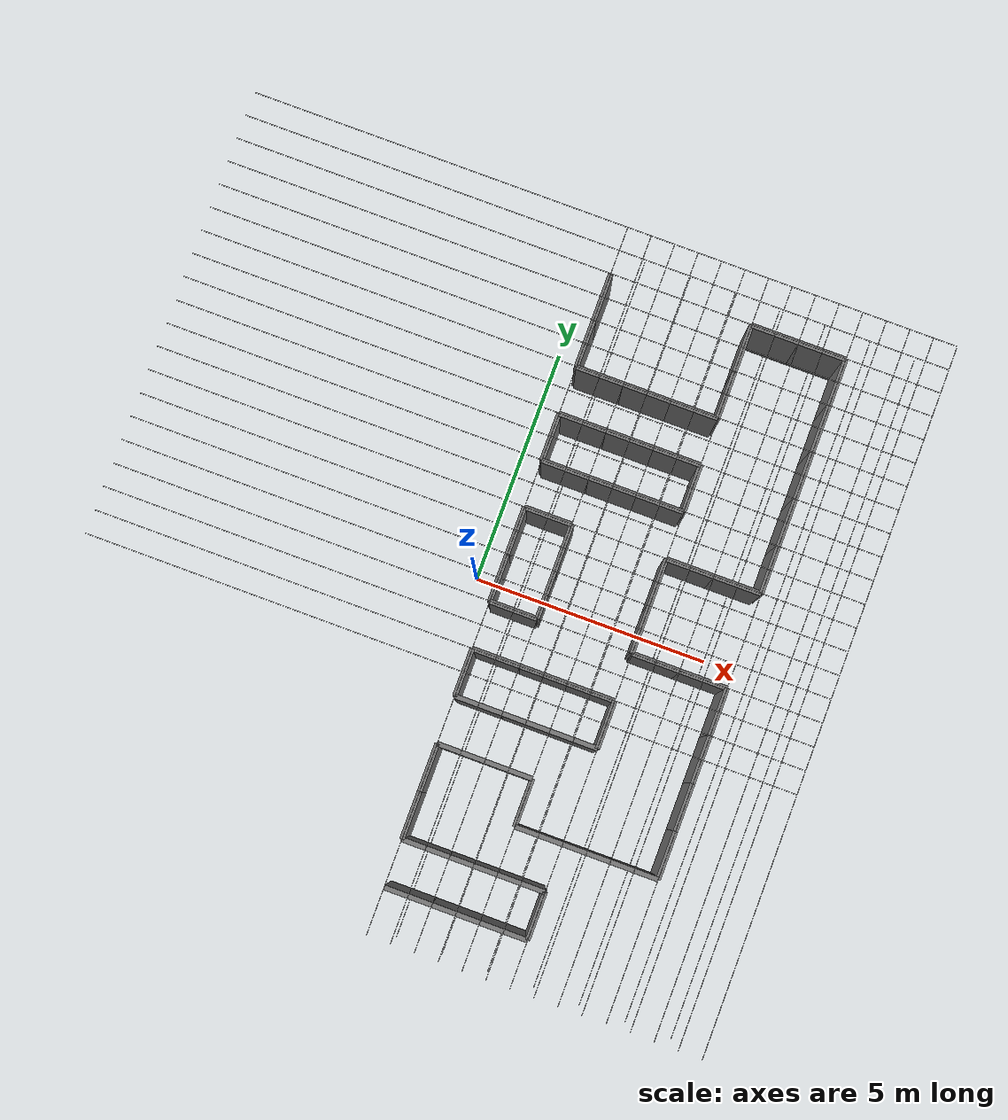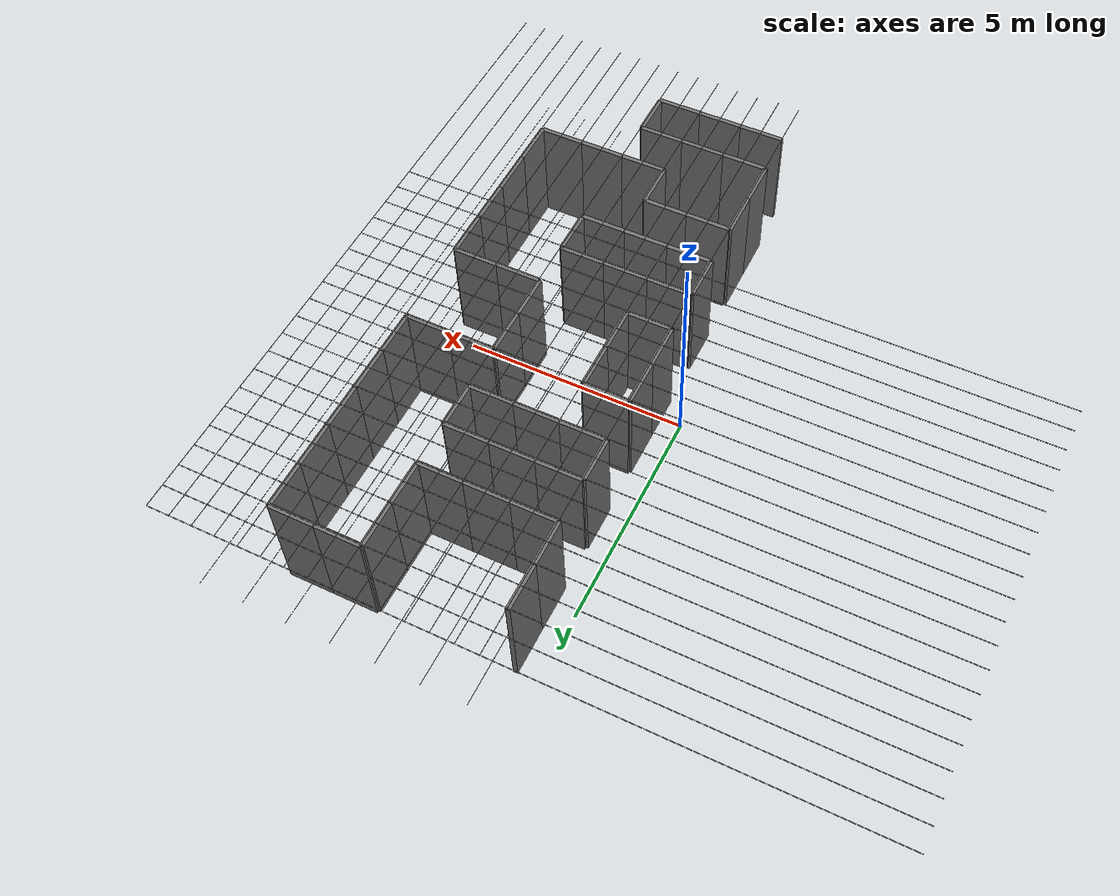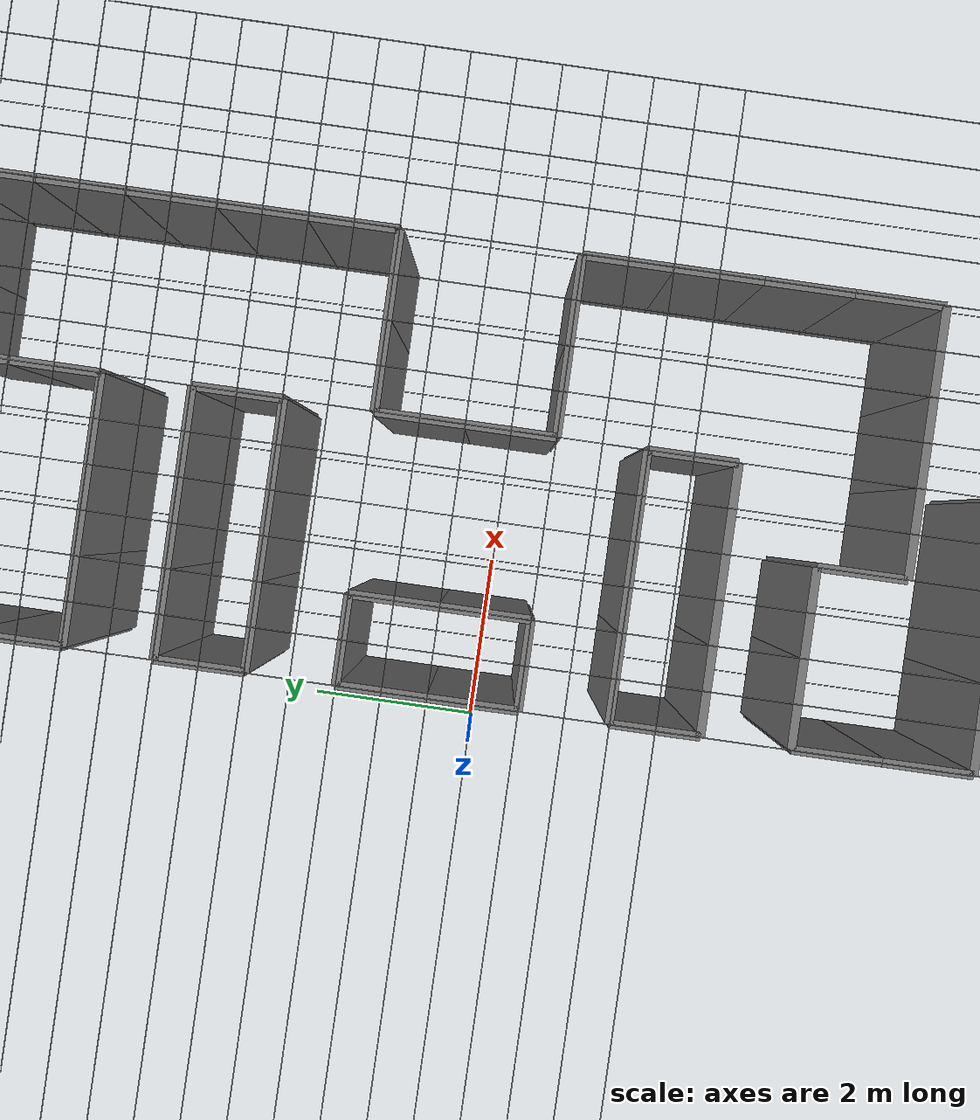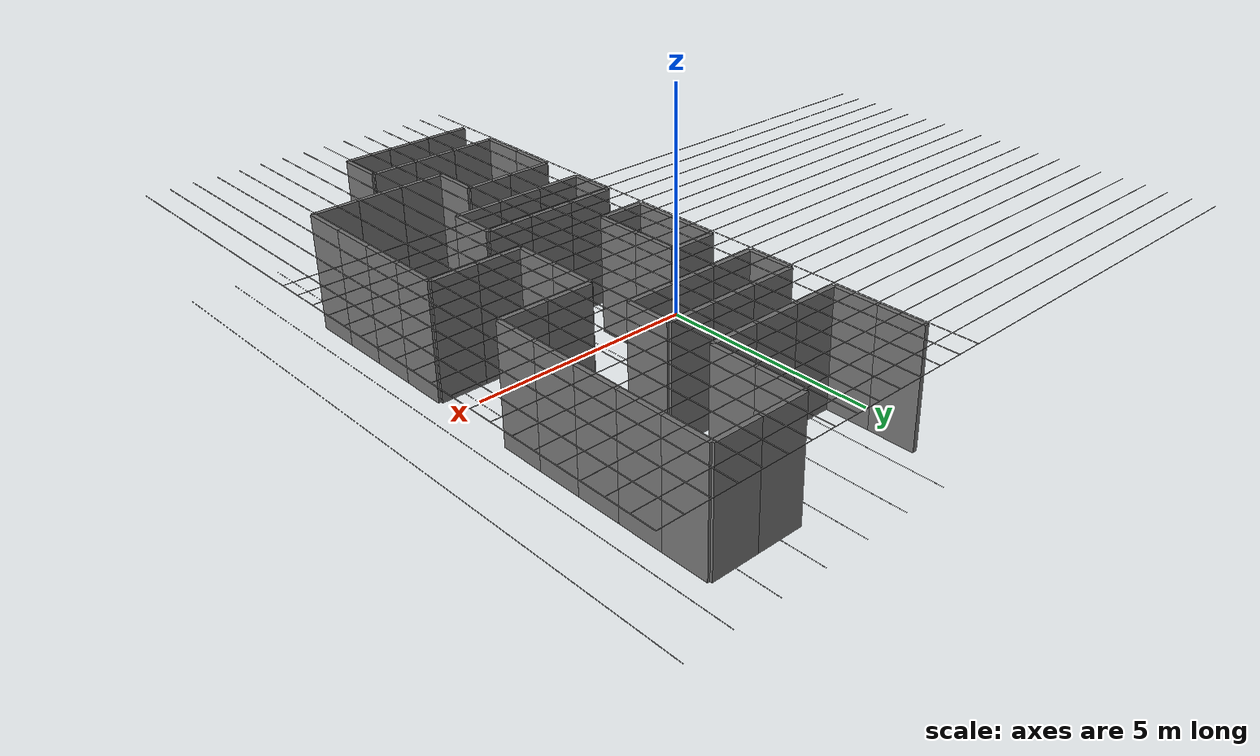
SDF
<sdf version="1.9">
 <world name="nidar_airmouse_building">
  <model name="grid_x_8">
   <static>true</static>
   <pose>1 0 0.006 0 0 0</pose>
   <link name="link">
    <visual name="visual">
     <geometry><box><size>0.008 15 0.002</size></box></geometry>
     <material><ambient>0.25 0.25 0.25 0.35</ambient></material>
    </visual>
   </link>
  </model>
  <model name="grid_x_9">
   <static>true</static>
   <pose>2 0 0.006 0 0 0</pose>
   <link name="link">
    <visual name="visual">
     <geometry><box><size>0.008 15 0.002</size></box></geometry>
     <material><ambient>0.25 0.25 0.25 0.35</ambient></material>
    </visual>
   </link>
  </model>
  <model name="grid_x_10">
   <static>true</static>
   <pose>3 0 0.006 0 0 0</pose>
   <link name="link">
    <visual name="visual">
     <geometry><box><size>0.008 15 0.002</size></box></geometry>
     <material><ambient>0.25 0.25 0.25 0.35</ambient></material>
    </visual>
   </link>
  </model>
  <model name="grid_x_11">
   <static>true</static>
   <pose>4 0 0.006 0 0 0</pose>
   <link name="link">
    <visual name="visual">
     <geometry><box><size>0.008 15 0.002</size></box></geometry>
     <material><ambient>0.25 0.25 0.25 0.35</ambient></material>
    </visual>
   </link>
  </model>
  <model name="grid_x_12">
   <static>true</static>
   <pose>5 0 0.006 0 0 0</pose>
   <link name="link">
    <visual name="visual">
     <geometry><box><size>0.008 15 0.002</size></box></geometry>
     <material><ambient>0.25 0.25 0.25 0.35</ambient></material>
    </visual>
   </link>
  </model>
  <model name="grid_x_13">
   <static>true</static>
   <pose>6 0 0.006 0 0 0</pose>
   <link name="link">
    <visual name="visual">
     <geometry><box><size>0.008 15 0.002</size></box></geometry>
     <material><ambient>0.25 0.25 0.25 0.35</ambient></material>
    </visual>
   </link>
  </model>
  <model name="grid_x_14">
   <static>true</static>
   <pose>7 0 0.006 0 0 0</pose>
   <link name="link">
    <visual name="visual">
     <geometry><box><size>0.008 15 0.002</size></box></geometry>
     <material><ambient>0.25 0.25 0.25 0.35</ambient></material>
    </visual>
   </link>
  </model>
  <model name="wall_7">
   <static>true</static>
   <pose>0.5 6.0 1.25
            0 0 0</pose>
   <link name="link">
    <collision name="collision"><geometry><box><size>0.1 1.0 2.5</size></box></geometry></collision>
    <visual name="visual">
     <geometry><box><size>0.1 1.0 2.5</size></box></geometry>
     <material><ambient>0.35 0.35 0.35 1</ambient><diffuse>0.45 0.45 0.45 1</diffuse></material>
    </visual>
   </link>
  </model>
  <model name="wall_8">
   <static>true</static>
   <pose>4.0 6.5 1.25
            0 0 0</pose>
   <link name="link">
    <collision name="collision"><geometry><box><size>1.0 0.1 2.5</size></box></geometry></collision>
    <visual name="visual">
     <geometry><box><size>1.0 0.1 2.5</size></box></geometry>
     <material><ambient>0.35 0.35 0.35 1</ambient><diffuse>0.45 0.45 0.45 1</diffuse></material>
    </visual>
   </link>
  </model>
  <model name="wall_9">
   <static>true</static>
   <pose>3.5 6.0 1.25
            0 0 0</pose>
   <link name="link">
    <collision name="collision"><geometry><box><size>0.1 1.0 2.5</size></box></geometry></collision>
    <visual name="visual">
     <geometry><box><size>0.1 1.0 2.5</size></box></geometry>
     <material><ambient>0.35 0.35 0.35 1</ambient><diffuse>0.45 0.45 0.45 1</diffuse></material>
    </visual>
   </link>
  </model>
  <model name="wall_10">
   <static>true</static>
   <pose>5.0 6.5 1.25
            0 0 0</pose>
   <link name="link">
    <collision name="collision"><geometry><box><size>1.0 0.1 2.5</size></box></geometry></collision>
    <visual name="visual">
     <geometry><box><size>1.0 0.1 2.5</size></box></geometry>
     <material><ambient>0.35 0.35 0.35 1</ambient><diffuse>0.45 0.45 0.45 1</diffuse></material>
    </visual>
   </link>
  </model>
  <model name="wall_11">
   <static>true</static>
   <pose>5.5 6.0 1.25
            0 0 0</pose>
   <link name="link">
    <collision name="collision"><geometry><box><size>0.1 1.0 2.5</size></box></geometry></collision>
    <visual name="visual">
     <geometry><box><size>0.1 1.0 2.5</size></box></geometry>
     <material><ambient>0.35 0.35 0.35 1</ambient><diffuse>0.45 0.45 0.45 1</diffuse></material>
    </visual>
   </link>
  </model>
  <model name="wall_16">
   <static>true</static>
   <pose>0.5 5.0 1.25
            0 0 0</pose>
   <link name="link">
    <collision name="collision"><geometry><box><size>0.1 1.0 2.5</size></box></geometry></collision>
    <visual name="visual">
     <geometry><box><size>0.1 1.0 2.5</size></box></geometry>
     <material><ambient>0.35 0.35 0.35 1</ambient><diffuse>0.45 0.45 0.45 1</diffuse></material>
    </visual>
   </link>
  </model>
  <model name="wall_17">
   <static>true</static>
   <pose>3.5 5.0 1.25
            0 0 0</pose>
   <link name="link">
    <collision name="collision"><geometry><box><size>0.1 1.0 2.5</size></box></geometry></collision>
    <visual name="visual">
     <geometry><box><size>0.1 1.0 2.5</size></box></geometry>
     <material><ambient>0.35 0.35 0.35 1</ambient><diffuse>0.45 0.45 0.45 1</diffuse></material>
    </visual>
   </link>
  </model>
  <model name="wall_18">
   <static>true</static>
   <pose>5.5 5.0 1.25
            0 0 0</pose>
   <link name="link">
    <collision name="collision"><geometry><box><size>0.1 1.0 2.5</size></box></geometry></collision>
    <visual name="visual">
     <geometry><box><size>0.1 1.0 2.5</size></box></geometry>
     <material><ambient>0.35 0.35 0.35 1</ambient><diffuse>0.45 0.45 0.45 1</diffuse></material>
    </visual>
   </link>
  </model>
  <model name="wall_26">
   <static>true</static>
   <pose>1.0 4.5 1.25
            0 0 0</pose>
   <link name="link">
    <collision name="collision"><geometry><box><size>1.0 0.1 2.5</size></box></geometry></collision>
    <visual name="visual">
     <geometry><box><size>1.0 0.1 2.5</size></box></geometry>
     <material><ambient>0.35 0.35 0.35 1</ambient><diffuse>0.45 0.45 0.45 1</diffuse></material>
    </visual>
   </link>
  </model>
  <model name="wall_27">
   <static>true</static>
   <pose>1.0 3.5 1.25
            0 0 0</pose>
   <link name="link">
    <collision name="collision"><geometry><box><size>1.0 0.1 2.5</size></box></geometry></collision>
    <visual name="visual">
     <geometry><box><size>1.0 0.1 2.5</size></box></geometry>
     <material><ambient>0.35 0.35 0.35 1</ambient><diffuse>0.45 0.45 0.45 1</diffuse></material>
    </visual>
   </link>
  </model>
  <model name="wall_28">
   <static>true</static>
   <pose>2.0 4.5 1.25
            0 0 0</pose>
   <link name="link">
    <collision name="collision"><geometry><box><size>1.0 0.1 2.5</size></box></geometry></collision>
    <visual name="visual">
     <geometry><box><size>1.0 0.1 2.5</size></box></geometry>
     <material><ambient>0.35 0.35 0.35 1</ambient><diffuse>0.45 0.45 0.45 1</diffuse></material>
    </visual>
   </link>
  </model>
  <model name="wall_29">
   <static>true</static>
   <pose>2.0 3.5 1.25
            0 0 0</pose>
   <link name="link">
    <collision name="collision"><geometry><box><size>1.0 0.1 2.5</size></box></geometry></collision>
    <visual name="visual">
     <geometry><box><size>1.0 0.1 2.5</size></box></geometry>
     <material><ambient>0.35 0.35 0.35 1</ambient><diffuse>0.45 0.45 0.45 1</diffuse></material>
    </visual>
   </link>
  </model>
  <model name="wall_30">
   <static>true</static>
   <pose>3.0 4.5 1.25
            0 0 0</pose>
   <link name="link">
    <collision name="collision"><geometry><box><size>1.0 0.1 2.5</size></box></geometry></collision>
    <visual name="visual">
     <geometry><box><size>1.0 0.1 2.5</size></box></geometry>
     <material><ambient>0.35 0.35 0.35 1</ambient><diffuse>0.45 0.45 0.45 1</diffuse></material>
    </visual>
   </link>
  </model>
  <model name="wall_31">
   <static>true</static>
   <pose>3.0 3.5 1.25
            0 0 0</pose>
   <link name="link">
    <collision name="collision"><geometry><box><size>1.0 0.1 2.5</size></box></geometry></collision>
    <visual name="visual">
     <geometry><box><size>1.0 0.1 2.5</size></box></geometry>
     <material><ambient>0.35 0.35 0.35 1</ambient><diffuse>0.45 0.45 0.45 1</diffuse></material>
    </visual>
   </link>
  </model>
  <model name="wall_32">
   <static>true</static>
   <pose>5.5 4.0 1.25
            0 0 0</pose>
   <link name="link">
    <collision name="collision"><geometry><box><size>0.1 1.0 2.5</size></box></geometry></collision>
    <visual name="visual">
     <geometry><box><size>0.1 1.0 2.5</size></box></geometry>
     <material><ambient>0.35 0.35 0.35 1</ambient><diffuse>0.45 0.45 0.45 1</diffuse></material>
    </visual>
   </link>
  </model>
  <model name="wall_36">
   <static>true</static>
   <pose>0.5 3.0 1.25
            0 0 0</pose>
   <link name="link">
    <collision name="collision"><geometry><box><size>0.1 1.0 2.5</size></box></geometry></collision>
    <visual name="visual">
     <geometry><box><size>0.1 1.0 2.5</size></box></geometry>
     <material><ambient>0.35 0.35 0.35 1</ambient><diffuse>0.45 0.45 0.45 1</diffuse></material>
    </visual>
   </link>
  </model>
  <model name="wall_37">
   <static>true</static>
   <pose>3.5 3.0 1.25
            0 0 0</pose>
   <link name="link">
    <collision name="collision"><geometry><box><size>0.1 1.0 2.5</size></box></geometry></collision>
    <visual name="visual">
     <geometry><box><size>0.1 1.0 2.5</size></box></geometry>
     <material><ambient>0.35 0.35 0.35 1</ambient><diffuse>0.45 0.45 0.45 1</diffuse></material>
    </visual>
   </link>
  </model>
  <model name="wall_38">
   <static>true</static>
   <pose>5.5 3.0 1.25
            0 0 0</pose>
   <link name="link">
    <collision name="collision"><geometry><box><size>0.1 1.0 2.5</size></box></geometry></collision>
    <visual name="visual">
     <geometry><box><size>0.1 1.0 2.5</size></box></geometry>
     <material><ambient>0.35 0.35 0.35 1</ambient><diffuse>0.45 0.45 0.45 1</diffuse></material>
    </visual>
   </link>
  </model>
  <model name="wall_48">
   <static>true</static>
   <pose>1.0 2.5 1.25
            0 0 0</pose>
   <link name="link">
    <collision name="collision"><geometry><box><size>1.0 0.1 2.5</size></box></geometry></collision>
    <visual name="visual">
     <geometry><box><size>1.0 0.1 2.5</size></box></geometry>
     <material><ambient>0.35 0.35 0.35 1</ambient><diffuse>0.45 0.45 0.45 1</diffuse></material>
    </visual>
   </link>
  </model>
  <model name="wall_49">
   <static>true</static>
   <pose>1.0 1.5 1.25
            0 0 0</pose>
   <link name="link">
    <collision name="collision"><geometry><box><size>1.0 0.1 2.5</size></box></geometry></collision>
    <visual name="visual">
     <geometry><box><size>1.0 0.1 2.5</size></box></geometry>
     <material><ambient>0.35 0.35 0.35 1</ambient><diffuse>0.45 0.45 0.45 1</diffuse></material>
    </visual>
   </link>
  </model>
  <model name="wall_50">
   <static>true</static>
   <pose>2.0 2.5 1.25
            0 0 0</pose>
   <link name="link">
    <collision name="collision"><geometry><box><size>1.0 0.1 2.5</size></box></geometry></collision>
    <visual name="visual">
     <geometry><box><size>1.0 0.1 2.5</size></box></geometry>
     <material><ambient>0.35 0.35 0.35 1</ambient><diffuse>0.45 0.45 0.45 1</diffuse></material>
    </visual>
   </link>
  </model>
  <model name="wall_51">
   <static>true</static>
   <pose>3.0 2.5 1.25
            0 0 0</pose>
   <link name="link">
    <collision name="collision"><geometry><box><size>1.0 0.1 2.5</size></box></geometry></collision>
    <visual name="visual">
     <geometry><box><size>1.0 0.1 2.5</size></box></geometry>
     <material><ambient>0.35 0.35 0.35 1</ambient><diffuse>0.45 0.45 0.45 1</diffuse></material>
    </visual>
   </link>
  </model>
  <model name="wall_52">
   <static>true</static>
   <pose>4.0 1.5 1.25
            0 0 0</pose>
   <link name="link">
    <collision name="collision"><geometry><box><size>1.0 0.1 2.5</size></box></geometry></collision>
    <visual name="visual">
     <geometry><box><size>1.0 0.1 2.5</size></box></geometry>
     <material><ambient>0.35 0.35 0.35 1</ambient><diffuse>0.45 0.45 0.45 1</diffuse></material>
    </visual>
   </link>
  </model>
  <model name="wall_53">
   <static>true</static>
   <pose>5.0 1.5 1.25
            0 0 0</pose>
   <link name="link">
    <collision name="collision"><geometry><box><size>1.0 0.1 2.5</size></box></geometry></collision>
    <visual name="visual">
     <geometry><box><size>1.0 0.1 2.5</size></box></geometry>
     <material><ambient>0.35 0.35 0.35 1</ambient><diffuse>0.45 0.45 0.45 1</diffuse></material>
    </visual>
   </link>
  </model>
  <model name="wall_54">
   <static>true</static>
   <pose>5.5 2.0 1.25
            0 0 0</pose>
   <link name="link">
    <collision name="collision"><geometry><box><size>0.1 1.0 2.5</size></box></geometry></collision>
    <visual name="visual">
     <geometry><box><size>0.1 1.0 2.5</size></box></geometry>
     <material><ambient>0.35 0.35 0.35 1</ambient><diffuse>0.45 0.45 0.45 1</diffuse></material>
    </visual>
   </link>
  </model>
  <model name="wall_56">
   <static>true</static>
   <pose>0.5 1.0 1.25
            0 0 0</pose>
   <link name="link">
    <collision name="collision"><geometry><box><size>0.1 1.0 2.5</size></box></geometry></collision>
    <visual name="visual">
     <geometry><box><size>0.1 1.0 2.5</size></box></geometry>
     <material><ambient>0.35 0.35 0.35 1</ambient><diffuse>0.45 0.45 0.45 1</diffuse></material>
    </visual>
   </link>
  </model>
  <model name="wall_57">
   <static>true</static>
   <pose>1.5 1.0 1.25
            0 0 0</pose>
   <link name="link">
    <collision name="collision"><geometry><box><size>0.1 1.0 2.5</size></box></geometry></collision>
    <visual name="visual">
     <geometry><box><size>0.1 1.0 2.5</size></box></geometry>
     <material><ambient>0.35 0.35 0.35 1</ambient><diffuse>0.45 0.45 0.45 1</diffuse></material>
    </visual>
   </link>
  </model>
  <model name="wall_58">
   <static>true</static>
   <pose>3.5 1.0 1.25
            0 0 0</pose>
   <link name="link">
    <collision name="collision"><geometry><box><size>0.1 1.0 2.5</size></box></geometry></collision>
    <visual name="visual">
     <geometry><box><size>0.1 1.0 2.5</size></box></geometry>
     <material><ambient>0.35 0.35 0.35 1</ambient><diffuse>0.45 0.45 0.45 1</diffuse></material>
    </visual>
   </link>
  </model>
  <model name="wall_60">
   <static>true</static>
   <pose>0.5 0.0 1.25
            0 0 0</pose>
   <link name="link">
    <collision name="collision"><geometry><box><size>0.1 1.0 2.5</size></box></geometry></collision>
    <visual name="visual">
     <geometry><box><size>0.1 1.0 2.5</size></box></geometry>
     <material><ambient>0.35 0.35 0.35 1</ambient><diffuse>0.45 0.45 0.45 1</diffuse></material>
    </visual>
   </link>
  </model>
  <model name="wall_61">
   <static>true</static>
   <pose>1.5 0.0 1.25
            0 0 0</pose>
   <link name="link">
    <collision name="collision"><geometry><box><size>0.1 1.0 2.5</size></box></geometry></collision>
    <visual name="visual">
     <geometry><box><size>0.1 1.0 2.5</size></box></geometry>
     <material><ambient>0.35 0.35 0.35 1</ambient><diffuse>0.45 0.45 0.45 1</diffuse></material>
    </visual>
   </link>
  </model>
  <model name="wall_62">
   <static>true</static>
   <pose>3.5 0.0 1.25
            0 0 0</pose>
   <link name="link">
    <collision name="collision"><geometry><box><size>0.1 1.0 2.5</size></box></geometry></collision>
    <visual name="visual">
     <geometry><box><size>0.1 1.0 2.5</size></box></geometry>
     <material><ambient>0.35 0.35 0.35 1</ambient><diffuse>0.45 0.45 0.45 1</diffuse></material>
    </visual>
   </link>
  </model>
  <model name="wall_64">
   <static>true</static>
   <pose>1.0 -0.5 1.25
            0 0 0</pose>
   <link name="link">
    <collision name="collision"><geometry><box><size>1.0 0.1 2.5</size></box></geometry></collision>
    <visual name="visual">
     <geometry><box><size>1.0 0.1 2.5</size></box></geometry>
     <material><ambient>0.35 0.35 0.35 1</ambient><diffuse>0.45 0.45 0.45 1</diffuse></material>
    </visual>
   </link>
  </model>
  <model name="wall_65">
   <static>true</static>
   <pose>1.0 -1.5 1.25
            0 0 0</pose>
   <link name="link">
    <collision name="collision"><geometry><box><size>1.0 0.1 2.5</size></box></geometry></collision>
    <visual name="visual">
     <geometry><box><size>1.0 0.1 2.5</size></box></geometry>
     <material><ambient>0.35 0.35 0.35 1</ambient><diffuse>0.45 0.45 0.45 1</diffuse></material>
    </visual>
   </link>
  </model>
  <model name="wall_66">
   <static>true</static>
   <pose>2.0 -1.5 1.25
            0 0 0</pose>
   <link name="link">
    <collision name="collision"><geometry><box><size>1.0 0.1 2.5</size></box></geometry></collision>
    <visual name="visual">
     <geometry><box><size>1.0 0.1 2.5</size></box></geometry>
     <material><ambient>0.35 0.35 0.35 1</ambient><diffuse>0.45 0.45 0.45 1</diffuse></material>
    </visual>
   </link>
  </model>
  <model name="wall_67">
   <static>true</static>
   <pose>3.0 -1.5 1.25
            0 0 0</pose>
   <link name="link">
    <collision name="collision"><geometry><box><size>1.0 0.1 2.5</size></box></geometry></collision>
    <visual name="visual">
     <geometry><box><size>1.0 0.1 2.5</size></box></geometry>
     <material><ambient>0.35 0.35 0.35 1</ambient><diffuse>0.45 0.45 0.45 1</diffuse></material>
    </visual>
   </link>
  </model>
  <model name="wall_68">
   <static>true</static>
   <pose>4.0 -0.5 1.25
            0 0 0</pose>
   <link name="link">
    <collision name="collision"><geometry><box><size>1.0 0.1 2.5</size></box></geometry></collision>
    <visual name="visual">
     <geometry><box><size>1.0 0.1 2.5</size></box></geometry>
     <material><ambient>0.35 0.35 0.35 1</ambient><diffuse>0.45 0.45 0.45 1</diffuse></material>
    </visual>
   </link>
  </model>
  <model name="wall_69">
   <static>true</static>
   <pose>5.0 -0.5 1.25
            0 0 0</pose>
   <link name="link">
    <collision name="collision"><geometry><box><size>1.0 0.1 2.5</size></box></geometry></collision>
    <visual name="visual">
     <geometry><box><size>1.0 0.1 2.5</size></box></geometry>
     <material><ambient>0.35 0.35 0.35 1</ambient><diffuse>0.45 0.45 0.45 1</diffuse></material>
    </visual>
   </link>
  </model>
  <model name="wall_70">
   <static>true</static>
   <pose>5.5 -1.0 1.25
            0 0 0</pose>
   <link name="link">
    <collision name="collision"><geometry><box><size>0.1 1.0 2.5</size></box></geometry></collision>
    <visual name="visual">
     <geometry><box><size>0.1 1.0 2.5</size></box></geometry>
     <material><ambient>0.35 0.35 0.35 1</ambient><diffuse>0.45 0.45 0.45 1</diffuse></material>
    </visual>
   </link>
  </model>
  <model name="wall_77">
   <static>true</static>
   <pose>0.5 -2.0 1.25
            0 0 0</pose>
   <link name="link">
    <collision name="collision"><geometry><box><size>0.1 1.0 2.5</size></box></geometry></collision>
    <visual name="visual">
     <geometry><box><size>0.1 1.0 2.5</size></box></geometry>
     <material><ambient>0.35 0.35 0.35 1</ambient><diffuse>0.45 0.45 0.45 1</diffuse></material>
    </visual>
   </link>
  </model>
  <model name="wall_78">
   <static>true</static>
   <pose>3.5 -2.0 1.25
            0 0 0</pose>
   <link name="link">
    <collision name="collision"><geometry><box><size>0.1 1.0 2.5</size></box></geometry></collision>
    <visual name="visual">
     <geometry><box><size>0.1 1.0 2.5</size></box></geometry>
     <material><ambient>0.35 0.35 0.35 1</ambient><diffuse>0.45 0.45 0.45 1</diffuse></material>
    </visual>
   </link>
  </model>
  <model name="wall_79">
   <static>true</static>
   <pose>5.5 -2.0 1.25
            0 0 0</pose>
   <link name="link">
    <collision name="collision"><geometry><box><size>0.1 1.0 2.5</size></box></geometry></collision>
    <visual name="visual">
     <geometry><box><size>0.1 1.0 2.5</size></box></geometry>
     <material><ambient>0.35 0.35 0.35 1</ambient><diffuse>0.45 0.45 0.45 1</diffuse></material>
    </visual>
   </link>
  </model>
  <model name="wall_86">
   <static>true</static>
   <pose>1.0 -2.5 1.25
            0 0 0</pose>
   <link name="link">
    <collision name="collision"><geometry><box><size>1.0 0.1 2.5</size></box></geometry></collision>
    <visual name="visual">
     <geometry><box><size>1.0 0.1 2.5</size></box></geometry>
     <material><ambient>0.35 0.35 0.35 1</ambient><diffuse>0.45 0.45 0.45 1</diffuse></material>
    </visual>
   </link>
  </model>
  <model name="wall_87">
   <static>true</static>
   <pose>1.0 -3.5 1.25
            0 0 0</pose>
   <link name="link">
    <collision name="collision"><geometry><box><size>1.0 0.1 2.5</size></box></geometry></collision>
    <visual name="visual">
     <geometry><box><size>1.0 0.1 2.5</size></box></geometry>
     <material><ambient>0.35 0.35 0.35 1</ambient><diffuse>0.45 0.45 0.45 1</diffuse></material>
    </visual>
   </link>
  </model>
  <model name="wall_88">
   <static>true</static>
   <pose>2.0 -2.5 1.25
            0 0 0</pose>
   <link name="link">
    <collision name="collision"><geometry><box><size>1.0 0.1 2.5</size></box></geometry></collision>
    <visual name="visual">
     <geometry><box><size>1.0 0.1 2.5</size></box></geometry>
     <material><ambient>0.35 0.35 0.35 1</ambient><diffuse>0.45 0.45 0.45 1</diffuse></material>
    </visual>
   </link>
  </model>
  <model name="wall_89">
   <static>true</static>
   <pose>2.0 -3.5 1.25
            0 0 0</pose>
   <link name="link">
    <collision name="collision"><geometry><box><size>1.0 0.1 2.5</size></box></geometry></collision>
    <visual name="visual">
     <geometry><box><size>1.0 0.1 2.5</size></box></geometry>
     <material><ambient>0.35 0.35 0.35 1</ambient><diffuse>0.45 0.45 0.45 1</diffuse></material>
    </visual>
   </link>
  </model>
  <model name="wall_90">
   <static>true</static>
   <pose>3.0 -2.5 1.25
            0 0 0</pose>
   <link name="link">
    <collision name="collision"><geometry><box><size>1.0 0.1 2.5</size></box></geometry></collision>
    <visual name="visual">
     <geometry><box><size>1.0 0.1 2.5</size></box></geometry>
     <material><ambient>0.35 0.35 0.35 1</ambient><diffuse>0.45 0.45 0.45 1</diffuse></material>
    </visual>
   </link>
  </model>
  <model name="wall_91">
   <static>true</static>
   <pose>5.5 -3.0 1.25
            0 0 0</pose>
   <link name="link">
    <collision name="collision"><geometry><box><size>0.1 1.0 2.5</size></box></geometry></collision>
    <visual name="visual">
     <geometry><box><size>0.1 1.0 2.5</size></box></geometry>
     <material><ambient>0.35 0.35 0.35 1</ambient><diffuse>0.45 0.45 0.45 1</diffuse></material>
    </visual>
   </link>
  </model>
  <model name="wall_93">
   <static>true</static>
   <pose>0.5 -4.0 1.25
            0 0 0</pose>
   <link name="link">
    <collision name="collision"><geometry><box><size>0.1 1.0 2.5</size></box></geometry></collision>
    <visual name="visual">
     <geometry><box><size>0.1 1.0 2.5</size></box></geometry>
     <material><ambient>0.35 0.35 0.35 1</ambient><diffuse>0.45 0.45 0.45 1</diffuse></material>
    </visual>
   </link>
  </model>
  <model name="wall_94">
   <static>true</static>
   <pose>3.0 -4.5 1.25
            0 0 0</pose>
   <link name="link">
    <collision name="collision"><geometry><box><size>1.0 0.1 2.5</size></box></geometry></collision>
    <visual name="visual">
     <geometry><box><size>1.0 0.1 2.5</size></box></geometry>
     <material><ambient>0.35 0.35 0.35 1</ambient><diffuse>0.45 0.45 0.45 1</diffuse></material>
    </visual>
   </link>
  </model>
  <model name="wall_95">
   <static>true</static>
   <pose>2.5 -4.0 1.25
            0 0 0</pose>
   <link name="link">
    <collision name="collision"><geometry><box><size>0.1 1.0 2.5</size></box></geometry></collision>
    <visual name="visual">
     <geometry><box><size>0.1 1.0 2.5</size></box></geometry>
     <material><ambient>0.35 0.35 0.35 1</ambient><diffuse>0.45 0.45 0.45 1</diffuse></material>
    </visual>
   </link>
  </model>
  <model name="wall_96">
   <static>true</static>
   <pose>4.0 -4.5 1.25
            0 0 0</pose>
   <link name="link">
    <collision name="collision"><geometry><box><size>1.0 0.1 2.5</size></box></geometry></collision>
    <visual name="visual">
     <geometry><box><size>1.0 0.1 2.5</size></box></geometry>
     <material><ambient>0.35 0.35 0.35 1</ambient><diffuse>0.45 0.45 0.45 1</diffuse></material>
    </visual>
   </link>
  </model>
  <model name="wall_97">
   <static>true</static>
   <pose>5.0 -4.5 1.25
            0 0 0</pose>
   <link name="link">
    <collision name="collision"><geometry><box><size>1.0 0.1 2.5</size></box></geometry></collision>
    <visual name="visual">
     <geometry><box><size>1.0 0.1 2.5</size></box></geometry>
     <material><ambient>0.35 0.35 0.35 1</ambient><diffuse>0.45 0.45 0.45 1</diffuse></material>
    </visual>
   </link>
  </model>
  <model name="wall_98">
   <static>true</static>
   <pose>5.5 -4.0 1.25
            0 0 0</pose>
   <link name="link">
    <collision name="collision"><geometry><box><size>0.1 1.0 2.5</size></box></geometry></collision>
    <visual name="visual">
     <geometry><box><size>0.1 1.0 2.5</size></box></geometry>
     <material><ambient>0.35 0.35 0.35 1</ambient><diffuse>0.45 0.45 0.45 1</diffuse></material>
    </visual>
   </link>
  </model>
  <model name="wall_100">
   <static>true</static>
   <pose>0.5 -5.0 1.25
            0 0 0</pose>
   <link name="link">
    <collision name="collision"><geometry><box><size>0.1 1.0 2.5</size></box></geometry></collision>
    <visual name="visual">
     <geometry><box><size>0.1 1.0 2.5</size></box></geometry>
     <material><ambient>0.35 0.35 0.35 1</ambient><diffuse>0.45 0.45 0.45 1</diffuse></material>
    </visual>
   </link>
  </model>
  <model name="wall_106">
   <static>true</static>
   <pose>1.0 -5.5 1.25
            0 0 0</pose>
   <link name="link">
    <collision name="collision"><geometry><box><size>1.0 0.1 2.5</size></box></geometry></collision>
    <visual name="visual">
     <geometry><box><size>1.0 0.1 2.5</size></box></geometry>
     <material><ambient>0.35 0.35 0.35 1</ambient><diffuse>0.45 0.45 0.45 1</diffuse></material>
    </visual>
   </link>
  </model>
  <model name="wall_107">
   <static>true</static>
   <pose>1.0 -6.5 1.25
            0 0 0</pose>
   <link name="link">
    <collision name="collision"><geometry><box><size>1.0 0.1 2.5</size></box></geometry></collision>
    <visual name="visual">
     <geometry><box><size>1.0 0.1 2.5</size></box></geometry>
     <material><ambient>0.35 0.35 0.35 1</ambient><diffuse>0.45 0.45 0.45 1</diffuse></material>
    </visual>
   </link>
  </model>
  <model name="wall_108">
   <static>true</static>
   <pose>2.0 -5.5 1.25
            0 0 0</pose>
   <link name="link">
    <collision name="collision"><geometry><box><size>1.0 0.1 2.5</size></box></geometry></collision>
    <visual name="visual">
     <geometry><box><size>1.0 0.1 2.5</size></box></geometry>
     <material><ambient>0.35 0.35 0.35 1</ambient><diffuse>0.45 0.45 0.45 1</diffuse></material>
    </visual>
   </link>
  </model>
  <model name="wall_109">
   <static>true</static>
   <pose>2.0 -6.5 1.25
            0 0 0</pose>
   <link name="link">
    <collision name="collision"><geometry><box><size>1.0 0.1 2.5</size></box></geometry></collision>
    <visual name="visual">
     <geometry><box><size>1.0 0.1 2.5</size></box></geometry>
     <material><ambient>0.35 0.35 0.35 1</ambient><diffuse>0.45 0.45 0.45 1</diffuse></material>
    </visual>
   </link>
  </model>
  <model name="wall_110">
   <static>true</static>
   <pose>3.0 -5.5 1.25
            0 0 0</pose>
   <link name="link">
    <collision name="collision"><geometry><box><size>1.0 0.1 2.5</size></box></geometry></collision>
    <visual name="visual">
     <geometry><box><size>1.0 0.1 2.5</size></box></geometry>
     <material><ambient>0.35 0.35 0.35 1</ambient><diffuse>0.45 0.45 0.45 1</diffuse></material>
    </visual>
   </link>
  </model>
  <model name="wall_111">
   <static>true</static>
   <pose>3.0 -6.5 1.25
            0 0 0</pose>
   <link name="link">
    <collision name="collision"><geometry><box><size>1.0 0.1 2.5</size></box></geometry></collision>
    <visual name="visual">
     <geometry><box><size>1.0 0.1 2.5</size></box></geometry>
     <material><ambient>0.35 0.35 0.35 1</ambient><diffuse>0.45 0.45 0.45 1</diffuse></material>
    </visual>
   </link>
  </model>
  <model name="wall_112">
   <static>true</static>
   <pose>3.5 -6.0 1.25
            0 0 0</pose>
   <link name="link">
    <collision name="collision"><geometry><box><size>0.1 1.0 2.5</size></box></geometry></collision>
    <visual name="visual">
     <geometry><box><size>0.1 1.0 2.5</size></box></geometry>
     <material><ambient>0.35 0.35 0.35 1</ambient><diffuse>0.45 0.45 0.45 1</diffuse></material>
    </visual>
   </link>
  </model>
  <model name="net_x_16">
   <static>true</static>
   <pose>0.5 0 2.55
                0 0 0</pose>
   <link name="link">
    <visual name="visual"><geometry><box><size>0.008 15 0.008</size></box></geometry></visual>
   </link>
  </model>
  <model name="net_x_17">
   <static>true</static>
   <pose>1.0 0 2.55
                0 0 0</pose>
   <link name="link">
    <visual name="visual"><geometry><box><size>0.008 15 0.008</size></box></geometry></visual>
   </link>
  </model>
  <model name="net_x_18">
   <static>true</static>
   <pose>1.5 0 2.55
                0 0 0</pose>
   <link name="link">
    <visual name="visual"><geometry><box><size>0.008 15 0.008</size></box></geometry></visual>
   </link>
  </model>
  <model name="net_x_19">
   <static>true</static>
   <pose>2.0 0 2.55
                0 0 0</pose>
   <link name="link">
    <visual name="visual"><geometry><box><size>0.008 15 0.008</size></box></geometry></visual>
   </link>
  </model>
  <model name="net_x_20">
   <static>true</static>
   <pose>2.5 0 2.55
                0 0 0</pose>
   <link name="link">
    <visual name="visual"><geometry><box><size>0.008 15 0.008</size></box></geometry></visual>
   </link>
  </model>
  <model name="net_x_21">
   <static>true</static>
   <pose>3.0 0 2.55
                0 0 0</pose>
   <link name="link">
    <visual name="visual"><geometry><box><size>0.008 15 0.008</size></box></geometry></visual>
   </link>
  </model>
  <model name="net_x_22">
   <static>true</static>
   <pose>3.5 0 2.55
                0 0 0</pose>
   <link name="link">
    <visual name="visual"><geometry><box><size>0.008 15 0.008</size></box></geometry></visual>
   </link>
  </model>
  <model name="net_x_23">
   <static>true</static>
   <pose>4.0 0 2.55
                0 0 0</pose>
   <link name="link">
    <visual name="visual"><geometry><box><size>0.008 15 0.008</size></box></geometry></visual>
   </link>
  </model>
  <model name="net_x_24">
   <static>true</static>
   <pose>4.5 0 2.55
                0 0 0</pose>
   <link name="link">
    <visual name="visual"><geometry><box><size>0.008 15 0.008</size></box></geometry></visual>
   </link>
  </model>
  <model name="net_x_25">
   <static>true</static>
   <pose>5.0 0 2.55
                0 0 0</pose>
   <link name="link">
    <visual name="visual"><geometry><box><size>0.008 15 0.008</size></box></geometry></visual>
   </link>
  </model>
  <model name="net_x_26">
   <static>true</static>
   <pose>5.5 0 2.55
                0 0 0</pose>
   <link name="link">
    <visual name="visual"><geometry><box><size>0.008 15 0.008</size></box></geometry></visual>
   </link>
  </model>
  <model name="net_x_27">
   <static>true</static>
   <pose>6.0 0 2.55
                0 0 0</pose>
   <link name="link">
    <visual name="visual"><geometry><box><size>0.008 15 0.008</size></box></geometry></visual>
   </link>
  </model>
  <model name="net_x_28">
   <static>true</static>
   <pose>6.5 0 2.55
                0 0 0</pose>
   <link name="link">
    <visual name="visual"><geometry><box><size>0.008 15 0.008</size></box></geometry></visual>
   </link>
  </model>
  <model name="net_x_29">
   <static>true</static>
   <pose>7.0 0 2.55
                0 0 0</pose>
   <link name="link">
    <visual name="visual"><geometry><box><size>0.008 15 0.008</size></box></geometry></visual>
   </link>
  </model>
  <model name="net_x_30">
   <static>true</static>
   <pose>7.5 0 2.55
                0 0 0</pose>
   <link name="link">
    <visual name="visual"><geometry><box><size>0.008 15 0.008</size></box></geometry></visual>
   </link>
  </model>
  <model name="net_y_42">
   <static>true</static>
   <pose>0 -2.0 2.55
                0 0 0</pose>
   <link name="link">
    <visual name="visual"><geometry><box><size>15 0.008 0.008</size></box></geometry></visual>
   </link>
  </model>
  <model name="net_y_43">
   <static>true</static>
   <pose>0 -1.5 2.55
                0 0 0</pose>
   <link name="link">
    <visual name="visual"><geometry><box><size>15 0.008 0.008</size></box></geometry></visual>
   </link>
  </model>
  <model name="net_y_44">
   <static>true</static>
   <pose>0 -1.0 2.55
                0 0 0</pose>
   <link name="link">
    <visual name="visual"><geometry><box><size>15 0.008 0.008</size></box></geometry></visual>
   </link>
  </model>
  <model name="net_y_45">
   <static>true</static>
   <pose>0 -0.5 2.55
                0 0 0</pose>
   <link name="link">
    <visual name="visual"><geometry><box><size>15 0.008 0.008</size></box></geometry></visual>
   </link>
  </model>
  <model name="net_y_46">
   <static>true</static>
   <pose>0 0.0 2.55
                0 0 0</pose>
   <link name="link">
    <visual name="visual"><geometry><box><size>15 0.008 0.008</size></box></geometry></visual>
   </link>
  </model>
  <model name="net_y_47">
   <static>true</static>
   <pose>0 0.5 2.55
                0 0 0</pose>
   <link name="link">
    <visual name="visual"><geometry><box><size>15 0.008 0.008</size></box></geometry></visual>
   </link>
  </model>
  <model name="net_y_48">
   <static>true</static>
   <pose>0 1.0 2.55
                0 0 0</pose>
   <link name="link">
    <visual name="visual"><geometry><box><size>15 0.008 0.008</size></box></geometry></visual>
   </link>
  </model>
  <model name="net_y_49">
   <static>true</static>
   <pose>0 1.5 2.55
                0 0 0</pose>
   <link name="link">
    <visual name="visual"><geometry><box><size>15 0.008 0.008</size></box></geometry></visual>
   </link>
  </model>
  <model name="net_y_50">
   <static>true</static>
   <pose>0 2.0 2.55
                0 0 0</pose>
   <link name="link">
    <visual name="visual"><geometry><box><size>15 0.008 0.008</size></box></geometry></visual>
   </link>
  </model>
  <model name="net_y_51">
   <static>true</static>
   <pose>0 2.5 2.55
                0 0 0</pose>
   <link name="link">
    <visual name="visual"><geometry><box><size>15 0.008 0.008</size></box></geometry></visual>
   </link>
  </model>
  <model name="net_y_52">
   <static>true</static>
   <pose>0 3.0 2.55
                0 0 0</pose>
   <link name="link">
    <visual name="visual"><geometry><box><size>15 0.008 0.008</size></box></geometry></visual>
   </link>
  </model>
  <model name="net_y_53">
   <static>true</static>
   <pose>0 3.5 2.55
                0 0 0</pose>
   <link name="link">
    <visual name="visual"><geometry><box><size>15 0.008 0.008</size></box></geometry></visual>
   </link>
  </model>
  <model name="net_y_54">
   <static>true</static>
   <pose>0 4.0 2.55
                0 0 0</pose>
   <link name="link">
    <visual name="visual"><geometry><box><size>15 0.008 0.008</size></box></geometry></visual>
   </link>
  </model>
  <model name="net_y_55">
   <static>true</static>
   <pose>0 4.5 2.55
                0 0 0</pose>
   <link name="link">
    <visual name="visual"><geometry><box><size>15 0.008 0.008</size></box></geometry></visual>
   </link>
  </model>
  <model name="net_y_56">
   <static>true</static>
   <pose>0 5.0 2.55
                0 0 0</pose>
   <link name="link">
    <visual name="visual"><geometry><box><size>15 0.008 0.008</size></box></geometry></visual>
   </link>
  </model>
  <model name="net_y_57">
   <static>true</static>
   <pose>0 5.5 2.55
                0 0 0</pose>
   <link name="link">
    <visual name="visual"><geometry><box><size>15 0.008 0.008</size></box></geometry></visual>
   </link>
  </model>
  <model name="net_y_58">
   <static>true</static>
   <pose>0 6.0 2.55
                0 0 0</pose>
   <link name="link">
    <visual name="visual"><geometry><box><size>15 0.008 0.008</size></box></geometry></visual>
   </link>
  </model>
  <model name="net_y_59">
   <static>true</static>
   <pose>0 6.5 2.55
                0 0 0</pose>
   <link name="link">
    <visual name="visual"><geometry><box><size>15 0.008 0.008</size></box></geometry></visual>
   </link>
  </model>
  <model name="net_y_60">
   <static>true</static>
   <pose>0 7.0 2.55
                0 0 0</pose>
   <link name="link">
    <visual name="visual"><geometry><box><size>15 0.008 0.008</size></box></geometry></visual>
   </link>
  </model>
  <model name="net_y_61">
   <static>true</static>
   <pose>0 7.5 2.55
                0 0 0</pose>
   <link name="link">
    <visual name="visual"><geometry><box><size>15 0.008 0.008</size></box></geometry></visual>
   </link>
  </model>
 </world>
</sdf>
